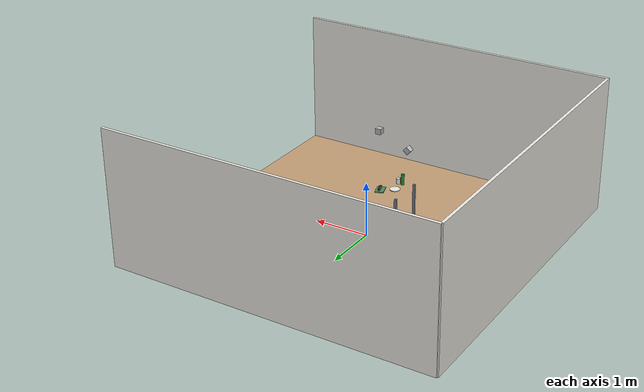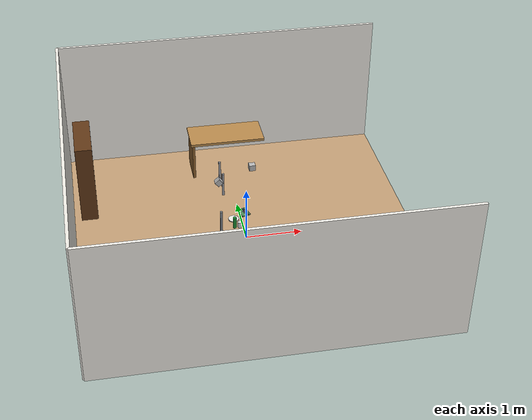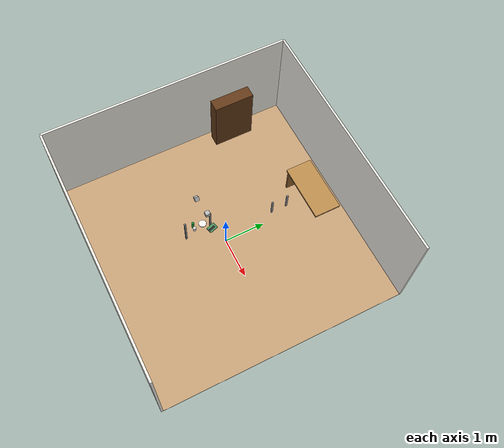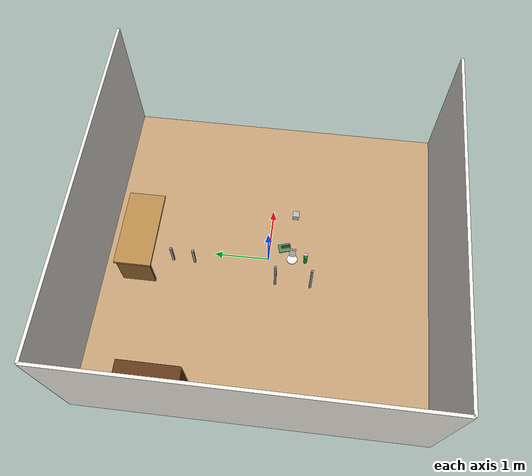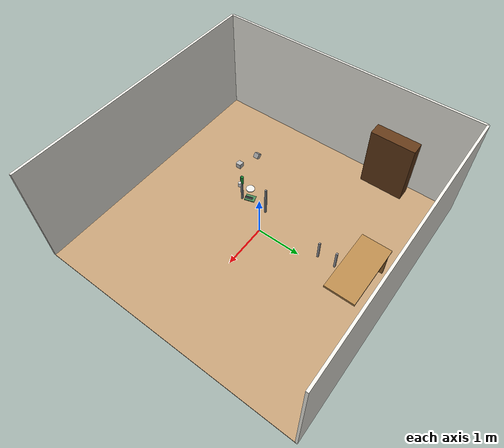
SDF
<sdf version="1.10">
 <world name="bps_room">
  <model name="floor">
   <static>true</static>
   <link name="link">
    <collision name="collision"><geometry><box><size>6 6 0.02</size></box></geometry></collision>
    <visual name="visual">
     <geometry><box><size>6 6 0.02</size></box></geometry>
     <material>
      <ambient>0.75999999 0.620000005 0.460000008 1</ambient>
      <diffuse>0.75999999 0.620000005 0.460000008 1</diffuse>
     </material>
    </visual>
    <inertial>
     <mass>1</mass>
     <inertia><ixx>1</ixx><ixy>0</ixy><ixz>0</ixz><iyy>1</iyy><iyz>0</iyz><izz>1</izz></inertia>
    </inertial>
   </link>
  </model>
  <model name="wall_north">
   <static>true</static>
   <pose>0 3 1.25 0 0 0</pose>
   <link name="link">
    <collision name="collision">
     <geometry><box><size>6 0.050000000000000003 2.5</size></box></geometry>
    </collision>
    <visual name="visual">
     <geometry><box><size>6 0.050000000000000003 2.5</size></box></geometry>
     <material>
      <ambient>0.949999988 0.939999998 0.910000026 1</ambient>
      <diffuse>0.949999988 0.939999998 0.910000026 1</diffuse>
     </material>
    </visual>
    <inertial>
     <mass>1</mass>
     <inertia><ixx>1</ixx><ixy>0</ixy><ixz>0</ixz><iyy>1</iyy><iyz>0</iyz><izz>1</izz></inertia>
    </inertial>
   </link>
  </model>
  <model name="wall_south">
   <static>true</static>
   <pose>0 -3 1.25 0 0 0</pose>
   <link name="link">
    <collision name="collision">
     <geometry><box><size>6 0.050000000000000003 2.5</size></box></geometry>
    </collision>
    <visual name="visual">
     <geometry><box><size>6 0.050000000000000003 2.5</size></box></geometry>
     <material>
      <ambient>0.949999988 0.939999998 0.910000026 1</ambient>
      <diffuse>0.949999988 0.939999998 0.910000026 1</diffuse>
     </material>
    </visual>
    <inertial>
     <mass>1</mass>
     <inertia><ixx>1</ixx><ixy>0</ixy><ixz>0</ixz><iyy>1</iyy><iyz>0</iyz><izz>1</izz></inertia>
    </inertial>
   </link>
  </model>
  <model name="wall_west">
   <static>true</static>
   <pose>-3 0 1.25 0 0 0</pose>
   <link name="link">
    <collision name="collision">
     <geometry><box><size>0.050000000000000003 6 2.5</size></box></geometry>
    </collision>
    <visual name="visual">
     <geometry><box><size>0.050000000000000003 6 2.5</size></box></geometry>
     <material>
      <ambient>0.930000007 0.920000017 0.889999986 1</ambient>
      <diffuse>0.930000007 0.920000017 0.889999986 1</diffuse>
     </material>
    </visual>
    <inertial>
     <mass>1</mass>
     <inertia><ixx>1</ixx><ixy>0</ixy><ixz>0</ixz><iyy>1</iyy><iyz>0</iyz><izz>1</izz></inertia>
    </inertial>
   </link>
  </model>
  <model name="bookshelf_body">
   <static>true</static>
   <pose>-2.7000000000000002 1.5 0.75 0 0 0</pose>
   <link name="link">
    <collision name="collision"><geometry><box><size>0.29999999999999999 1 1.5</size></box></geometry></collision>
    <visual name="visual">
     <geometry><box><size>0.29999999999999999 1 1.5</size></box></geometry>
     <material>
      <ambient>0.379999995 0.219999999 0.0900000036 1</ambient>
      <diffuse>0.379999995 0.219999999 0.0900000036 1</diffuse>
     </material>
    </visual>
    <inertial>
     <mass>1</mass>
     <inertia><ixx>1</ixx><ixy>0</ixy><ixz>0</ixz><iyy>1</iyy><iyz>0</iyz><izz>1</izz></inertia>
    </inertial>
   </link>
  </model>
  <model name="shelf_1">
   <static>true</static>
   <pose>-2.7000000000000002 1.5 0.40000000000000002 0 0 0</pose>
   <link name="link">
    <collision name="collision">
     <geometry><box><size>0.28000000000000003 0.94999999999999996 0.02</size></box></geometry>
    </collision>
    <visual name="visual">
     <geometry><box><size>0.28000000000000003 0.94999999999999996 0.02</size></box></geometry>
     <material>
      <ambient>0.5 0.319999993 0.140000001 1</ambient>
      <diffuse>0.5 0.319999993 0.140000001 1</diffuse>
     </material>
    </visual>
    <inertial>
     <mass>1</mass>
     <inertia><ixx>1</ixx><ixy>0</ixy><ixz>0</ixz><iyy>1</iyy><iyz>0</iyz><izz>1</izz></inertia>
    </inertial>
   </link>
  </model>
  <model name="shelf_2">
   <static>true</static>
   <pose>-2.7000000000000002 1.5 0.84999999999999998 0 0 0</pose>
   <link name="link">
    <collision name="collision">
     <geometry><box><size>0.28000000000000003 0.94999999999999996 0.02</size></box></geometry>
    </collision>
    <visual name="visual">
     <geometry><box><size>0.28000000000000003 0.94999999999999996 0.02</size></box></geometry>
     <material>
      <ambient>0.5 0.319999993 0.140000001 1</ambient>
      <diffuse>0.5 0.319999993 0.140000001 1</diffuse>
     </material>
    </visual>
    <inertial>
     <mass>1</mass>
     <inertia><ixx>1</ixx><ixy>0</ixy><ixz>0</ixz><iyy>1</iyy><iyz>0</iyz><izz>1</izz></inertia>
    </inertial>
   </link>
  </model>
  <model name="shelf_3">
   <static>true</static>
   <pose>-2.7000000000000002 1.5 1.25 0 0 0</pose>
   <link name="link">
    <collision name="collision">
     <geometry><box><size>0.28000000000000003 0.94999999999999996 0.02</size></box></geometry>
    </collision>
    <visual name="visual">
     <geometry><box><size>0.28000000000000003 0.94999999999999996 0.02</size></box></geometry>
     <material>
      <ambient>0.5 0.319999993 0.140000001 1</ambient>
      <diffuse>0.5 0.319999993 0.140000001 1</diffuse>
     </material>
    </visual>
    <inertial>
     <mass>1</mass>
     <inertia><ixx>1</ixx><ixy>0</ixy><ixz>0</ixz><iyy>1</iyy><iyz>0</iyz><izz>1</izz></inertia>
    </inertial>
   </link>
  </model>
  <model name="books_row1">
   <static>true</static>
   <pose>-2.6200000000000001 1.5 0.62 0 0 0</pose>
   <link name="link">
    <visual name="visual">
     <geometry><box><size>0.040000000000000001 0.80000000000000004 0.20000000000000001</size></box></geometry>
     <material>
      <ambient>0.779999971 0.180000007 0.180000007 1</ambient>
      <diffuse>0.779999971 0.180000007 0.180000007 1</diffuse>
     </material>
    </visual>
    <inertial>
     <mass>1</mass>
     <inertia><ixx>1</ixx><ixy>0</ixy><ixz>0</ixz><iyy>1</iyy><iyz>0</iyz><izz>1</izz></inertia>
    </inertial>
   </link>
  </model>
  <model name="books_row2">
   <static>true</static>
   <pose>-2.6200000000000001 1.5 1.0600000000000001 0 0 0</pose>
   <link name="link">
    <visual name="visual">
     <geometry><box><size>0.040000000000000001 0.69999999999999996 0.17999999999999999</size></box></geometry>
     <material>
      <ambient>0.180000007 0.319999993 0.720000029 1</ambient>
      <diffuse>0.180000007 0.319999993 0.720000029 1</diffuse>
     </material>
    </visual>
    <inertial>
     <mass>1</mass>
     <inertia><ixx>1</ixx><ixy>0</ixy><ixz>0</ixz><iyy>1</iyy><iyz>0</iyz><izz>1</izz></inertia>
    </inertial>
   </link>
  </model>
  <model name="desk">
   <static>true</static>
   <pose>0 2.2999999999999998 0.75 0 0 0</pose>
   <link name="link">
    <collision name="collision">
     <geometry><box><size>1.3999999999999999 0.65000000000000002 0.050000000000000003</size></box></geometry>
    </collision>
    <visual name="visual">
     <geometry><box><size>1.3999999999999999 0.65000000000000002 0.050000000000000003</size></box></geometry>
     <material>
      <ambient>0.720000029 0.540000021 0.300000012 1</ambient>
      <diffuse>0.720000029 0.540000021 0.300000012 1</diffuse>
     </material>
    </visual>
    <inertial>
     <mass>1</mass>
     <inertia><ixx>1</ixx><ixy>0</ixy><ixz>0</ixz><iyy>1</iyy><iyz>0</iyz><izz>1</izz></inertia>
    </inertial>
   </link>
  </model>
  <model name="desk_leg_left">
   <static>true</static>
   <pose>-0.65000000000000002 2.2999999999999998 0.375 0 0 0</pose>
   <link name="link">
    <collision name="collision">
     <geometry><box><size>0.050000000000000003 0.59999999999999998 0.75</size></box></geometry>
    </collision>
    <visual name="visual">
     <geometry><box><size>0.050000000000000003 0.59999999999999998 0.75</size></box></geometry>
     <material>
      <ambient>0.550000012 0.379999995 0.180000007 1</ambient>
      <diffuse>0.550000012 0.379999995 0.180000007 1</diffuse>
     </material>
    </visual>
    <inertial>
     <mass>1</mass>
     <inertia><ixx>1</ixx><ixy>0</ixy><ixz>0</ixz><iyy>1</iyy><iyz>0</iyz><izz>1</izz></inertia>
    </inertial>
   </link>
  </model>
  <model name="chair_leg_fl">
   <static>true</static>
   <pose>-0.20000000000000001 1.3500000000000001 0.23999999999999999 0 0 0</pose>
   <link name="link">
    <collision name="collision">
     <geometry><box><size>0.040000000000000001 0.040000000000000001 0.47999999999999998</size></box></geometry>
    </collision>
    <visual name="visual">
     <geometry><box><size>0.040000000000000001 0.040000000000000001 0.47999999999999998</size></box></geometry>
     <material>
      <ambient>0.600000024 0.600000024 0.620000005 1</ambient>
      <diffuse>0.600000024 0.600000024 0.620000005 1</diffuse>
     </material>
    </visual>
    <inertial>
     <mass>1</mass>
     <inertia><ixx>1</ixx><ixy>0</ixy><ixz>0</ixz><iyy>1</iyy><iyz>0</iyz><izz>1</izz></inertia>
    </inertial>
   </link>
  </model>
  <model name="chair_leg_bl">
   <static>true</static>
   <pose>-0.20000000000000001 1.75 0.23999999999999999 0 0 0</pose>
   <link name="link">
    <collision name="collision">
     <geometry><box><size>0.040000000000000001 0.040000000000000001 0.47999999999999998</size></box></geometry>
    </collision>
    <visual name="visual">
     <geometry><box><size>0.040000000000000001 0.040000000000000001 0.47999999999999998</size></box></geometry>
     <material>
      <ambient>0.600000024 0.600000024 0.620000005 1</ambient>
      <diffuse>0.600000024 0.600000024 0.620000005 1</diffuse>
     </material>
    </visual>
    <inertial>
     <mass>1</mass>
     <inertia><ixx>1</ixx><ixy>0</ixy><ixz>0</ixz><iyy>1</iyy><iyz>0</iyz><izz>1</izz></inertia>
    </inertial>
   </link>
  </model>
  <model name="table_leg_fl">
   <static>true</static>
   <pose>-0.46999999999999997 -0.81999999999999995 0.375 0 0 0</pose>
   <link name="link">
    <collision name="collision">
     <geometry><box><size>0.040000000000000001 0.040000000000000001 0.75</size></box></geometry>
    </collision>
    <visual name="visual">
     <geometry><box><size>0.040000000000000001 0.040000000000000001 0.75</size></box></geometry>
     <material>
      <ambient>0.5 0.519999981 0.540000021 1</ambient>
      <diffuse>0.5 0.519999981 0.540000021 1</diffuse>
     </material>
    </visual>
    <inertial>
     <mass>1</mass>
     <inertia><ixx>1</ixx><ixy>0</ixy><ixz>0</ixz><iyy>1</iyy><iyz>0</iyz><izz>1</izz></inertia>
    </inertial>
   </link>
  </model>
  <model name="table_leg_bl">
   <static>true</static>
   <pose>-0.46999999999999997 -0.17999999999999999 0.375 0 0 0</pose>
   <link name="link">
    <collision name="collision">
     <geometry><box><size>0.040000000000000001 0.040000000000000001 0.75</size></box></geometry>
    </collision>
    <visual name="visual">
     <geometry><box><size>0.040000000000000001 0.040000000000000001 0.75</size></box></geometry>
     <material>
      <ambient>0.5 0.519999981 0.540000021 1</ambient>
      <diffuse>0.5 0.519999981 0.540000021 1</diffuse>
     </material>
    </visual>
    <inertial>
     <mass>1</mass>
     <inertia><ixx>1</ixx><ixy>0</ixy><ixz>0</ixz><iyy>1</iyy><iyz>0</iyz><izz>1</izz></inertia>
    </inertial>
   </link>
  </model>
  <model name="obj_bottle">
   <static>false</static>
   <pose>-0.32000000000000001 -0.68000000000000005 0.87 0 0 0</pose>
   <link name="link">
    <collision name="collision">
     <geometry>
      <cylinder><radius>0.029999999999999999</radius><length>0.20000000000000001</length></cylinder>
     </geometry>
    </collision>
    <visual name="visual">
     <geometry>
      <cylinder><radius>0.029999999999999999</radius><length>0.20000000000000001</length></cylinder>
     </geometry>
     <material>
      <ambient>0.100000001 0.550000012 0.200000003 1</ambient>
      <diffuse>0.100000001 0.550000012 0.200000003 1</diffuse>
      <specular>0.400000006 0.400000006 0.400000006 1</specular>
     </material>
     <plugin name="gz::sim::systems::Label" filename="gz-sim-label-system"><label>1</label></plugin>
    </visual>
    <inertial>
     <mass>1</mass>
     <inertia><ixx>1</ixx><ixy>0</ixy><ixz>0</ixz><iyy>1</iyy><iyz>0</iyz><izz>1</izz></inertia>
    </inertial>
    <sensor name="obj_bottle_contact_sensor" type="contact">
     <contact><collision>collision</collision></contact>
     <update_rate>30</update_rate>
     <always_on>true</always_on>
    </sensor>
   </link>
  </model>
  <model name="obj_mug">
   <static>false</static>
   <pose>-0.23499999999999999 -0.68000000000000005 0.81999999999999995 0 0 0</pose>
   <link name="link">
    <collision name="collision">
     <geometry>
      <cylinder><radius>0.035000000000000003</radius><length>0.10000000000000001</length></cylinder>
     </geometry>
    </collision>
    <visual name="visual">
     <geometry>
      <cylinder><radius>0.035000000000000003</radius><length>0.10000000000000001</length></cylinder>
     </geometry>
     <material>
      <ambient>0.850000024 0.850000024 0.850000024 1</ambient>
      <diffuse>0.850000024 0.850000024 0.850000024 1</diffuse>
      <specular>0.300000012 0.300000012 0.300000012 1</specular>
     </material>
     <plugin name="gz::sim::systems::Label" filename="gz-sim-label-system"><label>2</label></plugin>
    </visual>
    <inertial>
     <mass>1</mass>
     <inertia><ixx>1</ixx><ixy>0</ixy><ixz>0</ixz><iyy>1</iyy><iyz>0</iyz><izz>1</izz></inertia>
    </inertial>
    <sensor name="obj_mug_contact_sensor" type="contact">
     <contact><collision>collision</collision></contact>
     <update_rate>30</update_rate>
     <always_on>true</always_on>
    </sensor>
   </link>
  </model>
  <model name="obj_plate">
   <static>false</static>
   <pose>-0.29999999999999999 -0.45000000000000001 0.77749999999999997 0 0 0</pose>
   <link name="link">
    <collision name="collision">
     <geometry>
      <cylinder><radius>0.089999999999999997</radius><length>0.014999999999999999</length></cylinder>
     </geometry>
    </collision>
    <visual name="visual">
     <geometry>
      <cylinder><radius>0.089999999999999997</radius><length>0.014999999999999999</length></cylinder>
     </geometry>
     <material>
      <ambient>0.920000017 0.920000017 0.899999976 1</ambient>
      <diffuse>0.920000017 0.920000017 0.899999976 1</diffuse>
      <specular>0.300000012 0.300000012 0.300000012 1</specular>
     </material>
     <plugin name="gz::sim::systems::Label" filename="gz-sim-label-system"><label>6</label></plugin>
    </visual>
    <inertial>
     <mass>1</mass>
     <inertia><ixx>1</ixx><ixy>0</ixy><ixz>0</ixz><iyy>1</iyy><iyz>0</iyz><izz>1</izz></inertia>
    </inertial>
    <sensor name="obj_plate_contact_sensor" type="contact">
     <contact><collision>collision</collision></contact>
     <update_rate>30</update_rate>
     <always_on>true</always_on>
    </sensor>
   </link>
  </model>
  <model name="obj_notebook">
   <static>false</static>
   <pose>-0.10000000000000001 -0.29999999999999999 0.78000000000000003 0 0 0.30000000000000021</pose>
   <link name="link">
    <collision name="collision">
     <geometry><box><size>0.14999999999999999 0.20999999999999999 0.02</size></box></geometry>
    </collision>
    <visual name="visual">
     <geometry><box><size>0.14999999999999999 0.20999999999999999 0.02</size></box></geometry>
     <material>
      <ambient>0.300000012 0.550000012 0.349999994 1</ambient>
      <diffuse>0.300000012 0.550000012 0.349999994 1</diffuse>
      <specular>0.200000003 0.200000003 0.200000003 1</specular>
     </material>
     <plugin name="gz::sim::systems::Label" filename="gz-sim-label-system"><label>9</label></plugin>
    </visual>
    <inertial>
     <mass>1</mass>
     <inertia><ixx>1</ixx><ixy>0</ixy><ixz>0</ixz><iyy>1</iyy><iyz>0</iyz><izz>1</izz></inertia>
    </inertial>
    <sensor name="obj_notebook_contact_sensor" type="contact">
     <contact><collision>collision</collision></contact>
     <update_rate>30</update_rate>
     <always_on>true</always_on>
    </sensor>
   </link>
  </model>
  <model name="obj_remote">
   <static>false</static>
   <pose>-0.080000000000000002 -0.32000000000000001 0.80000000000000004 0 0 0.30000000000000021</pose>
   <link name="link">
    <collision name="collision">
     <geometry><box><size>0.044999999999999998 0.16 0.02</size></box></geometry>
    </collision>
    <visual name="visual">
     <geometry><box><size>0.044999999999999998 0.16 0.02</size></box></geometry>
     <material>
      <ambient>0.150000006 0.150000006 0.159999996 1</ambient>
      <diffuse>0.150000006 0.150000006 0.159999996 1</diffuse>
      <specular>0.300000012 0.300000012 0.300000012 1</specular>
     </material>
     <plugin name="gz::sim::systems::Label" filename="gz-sim-label-system"><label>10</label></plugin>
    </visual>
    <inertial>
     <mass>1</mass>
     <inertia><ixx>1</ixx><ixy>0</ixy><ixz>0</ixz><iyy>1</iyy><iyz>0</iyz><izz>1</izz></inertia>
    </inertial>
    <sensor name="obj_remote_contact_sensor" type="contact">
     <contact><collision>collision</collision></contact>
     <update_rate>30</update_rate>
     <always_on>true</always_on>
    </sensor>
   </link>
  </model>
  <model name="depth_camera">
   <static>true</static>
   <pose>-0.039113983511924744 -0.5 1.8508999347686768 3.1415899979989477 1.57079000476762 3.1415899979989477</pose>
   <link name="link">
    <pose>0.050000000000000003 0.050000000000000003 0.050000000000000003 0 0 0</pose>
    <inertial>
     <mass>0.10000000000000001</mass>
     <inertia>
      <ixx>0.00016666700000000001</ixx>
      <iyy>0.00016666700000000001</iyy>
      <izz>0.00016666700000000001</izz>
      <ixy>0</ixy>
      <ixz>0</ixz>
      <iyz>0</iyz>
     </inertia>
    </inertial>
    <collision name="collision">
     <geometry><box><size>0.10000000000000001 0.10000000000000001 0.10000000000000001</size></box></geometry>
    </collision>
    <visual name="visual">
     <geometry><box><size>0.10000000000000001 0.10000000000000001 0.10000000000000001</size></box></geometry>
    </visual>
    <sensor name="depth_camera1" type="depth_camera">
     <topic>depth_camera</topic>
     <update_rate>10</update_rate>
     <enable_metrics>false</enable_metrics>
     <camera>
      <horizontal_fov>1.2</horizontal_fov>
      <image>
       <width>640</width>
       <height>480</height>
       <format>R_FLOAT32</format>
       <anti_aliasing>4</anti_aliasing>
      </image>
      <camera_info_topic>__default__</camera_info_topic>
      <triggered>false</triggered>
      <clip><near>0.10000000000000001</near><far>2</far></clip>
      <save enabled="false"><path>__default__</path></save>
      <visibility_mask>4294967295</visibility_mask>
      <noise><type>none</type><mean>0</mean><stddev>0</stddev></noise>
      <distortion><k1>0</k1><k2>0</k2><k3>0</k3><p1>0</p1><p2>0</p2><center>0.5 0.5</center></distortion>
      <lens>
       <type>stereographic</type>
       <scale_to_hfov>true</scale_to_hfov>
       <cutoff_angle>1.5707963267948966</cutoff_angle>
       <env_texture_size>256</env_texture_size>
      </lens>
     </camera>
    </sensor>
    <sensor name="rgb_camera" type="camera">
     <topic>rgb_camera</topic>
     <update_rate>10</update_rate>
     <enable_metrics>false</enable_metrics>
     <camera>
      <horizontal_fov>1.2</horizontal_fov>
      <image><width>640</width><height>480</height><format>RGB_INT8</format><anti_aliasing>4</anti_aliasing></image>
      <camera_info_topic>__default__</camera_info_topic>
      <triggered>false</triggered>
      <clip><near>0.10000000000000001</near><far>2</far></clip>
      <save enabled="false"><path>__default__</path></save>
      <visibility_mask>4294967295</visibility_mask>
      <noise><type>none</type><mean>0</mean><stddev>0</stddev></noise>
      <distortion><k1>0</k1><k2>0</k2><k3>0</k3><p1>0</p1><p2>0</p2><center>0.5 0.5</center></distortion>
      <lens>
       <type>stereographic</type>
       <scale_to_hfov>true</scale_to_hfov>
       <cutoff_angle>1.5707963267948966</cutoff_angle>
       <env_texture_size>256</env_texture_size>
      </lens>
     </camera>
    </sensor>
    <sensor name="semantic_camera" type="segmentation_camera">
     <topic>semantic_camera</topic>
     <update_rate>10</update_rate>
     <enable_metrics>false</enable_metrics>
     <camera>
      <horizontal_fov>1.2</horizontal_fov>
      <image><width>640</width><height>480</height></image>
      <clip><near>0.1</near><far>100</far></clip>
      <segmentation_type>semantic</segmentation_type>
     </camera>
    </sensor>
   </link>
  </model>
  <model name="depth_camera_v4">
   <static>true</static>
   <pose>-0.6152876096865394 -0.5058333333333332 1.577919443118978 -0.0 0.8726646259971648 -1.7272004125383903e-16</pose>
   <link name="link">
    <pose>0.050000000000000003 0.050000000000000003 0.050000000000000003 0 0 0</pose>
    <inertial>
     <mass>0.10000000000000001</mass>
     <inertia>
      <ixx>0.00016666700000000001</ixx>
      <iyy>0.00016666700000000001</iyy>
      <izz>0.00016666700000000001</izz>
      <ixy>0</ixy>
      <ixz>0</ixz>
      <iyz>0</iyz>
     </inertia>
    </inertial>
    <collision name="collision">
     <geometry><box><size>0.10000000000000001 0.10000000000000001 0.10000000000000001</size></box></geometry>
    </collision>
    <visual name="visual">
     <geometry><box><size>0.10000000000000001 0.10000000000000001 0.10000000000000001</size></box></geometry>
    </visual>
    <sensor name="depth_camera4" type="depth_camera">
     <topic>depth_camera_v4</topic>
     <update_rate>10</update_rate>
     <enable_metrics>false</enable_metrics>
     <camera>
      <horizontal_fov>1.2</horizontal_fov>
      <image>
       <width>640</width>
       <height>480</height>
       <format>R_FLOAT32</format>
       <anti_aliasing>4</anti_aliasing>
      </image>
      <camera_info_topic>__default__</camera_info_topic>
      <triggered>false</triggered>
      <clip><near>0.10000000000000001</near><far>2</far></clip>
      <save enabled="false"><path>__default__</path></save>
      <visibility_mask>4294967295</visibility_mask>
      <noise><type>none</type><mean>0</mean><stddev>0</stddev></noise>
      <distortion><k1>0</k1><k2>0</k2><k3>0</k3><p1>0</p1><p2>0</p2><center>0.5 0.5</center></distortion>
      <lens>
       <type>stereographic</type>
       <scale_to_hfov>true</scale_to_hfov>
       <cutoff_angle>1.5707963267948966</cutoff_angle>
       <env_texture_size>256</env_texture_size>
      </lens>
     </camera>
    </sensor>
    <sensor name="rgb_camera4" type="camera">
     <topic>rgb_camera_v4</topic>
     <update_rate>10</update_rate>
     <enable_metrics>false</enable_metrics>
     <camera>
      <horizontal_fov>1.2</horizontal_fov>
      <image><width>640</width><height>480</height><format>RGB_INT8</format><anti_aliasing>4</anti_aliasing></image>
      <camera_info_topic>__default__</camera_info_topic>
      <triggered>false</triggered>
      <clip><near>0.10000000000000001</near><far>2</far></clip>
      <save enabled="false"><path>__default__</path></save>
      <visibility_mask>4294967295</visibility_mask>
      <noise><type>none</type><mean>0</mean><stddev>0</stddev></noise>
      <distortion><k1>0</k1><k2>0</k2><k3>0</k3><p1>0</p1><p2>0</p2><center>0.5 0.5</center></distortion>
      <lens>
       <type>stereographic</type>
       <scale_to_hfov>true</scale_to_hfov>
       <cutoff_angle>1.5707963267948966</cutoff_angle>
       <env_texture_size>256</env_texture_size>
      </lens>
     </camera>
    </sensor>
    <sensor name="semantic_camera4" type="segmentation_camera">
     <topic>semantic_camera_v4</topic>
     <update_rate>10</update_rate>
     <enable_metrics>false</enable_metrics>
     <camera>
      <horizontal_fov>1.2</horizontal_fov>
      <image><width>640</width><height>480</height></image>
      <clip><near>0.1</near><far>100</far></clip>
      <segmentation_type>semantic</segmentation_type>
     </camera>
    </sensor>
   </link>
  </model>
 </world>
</sdf>
